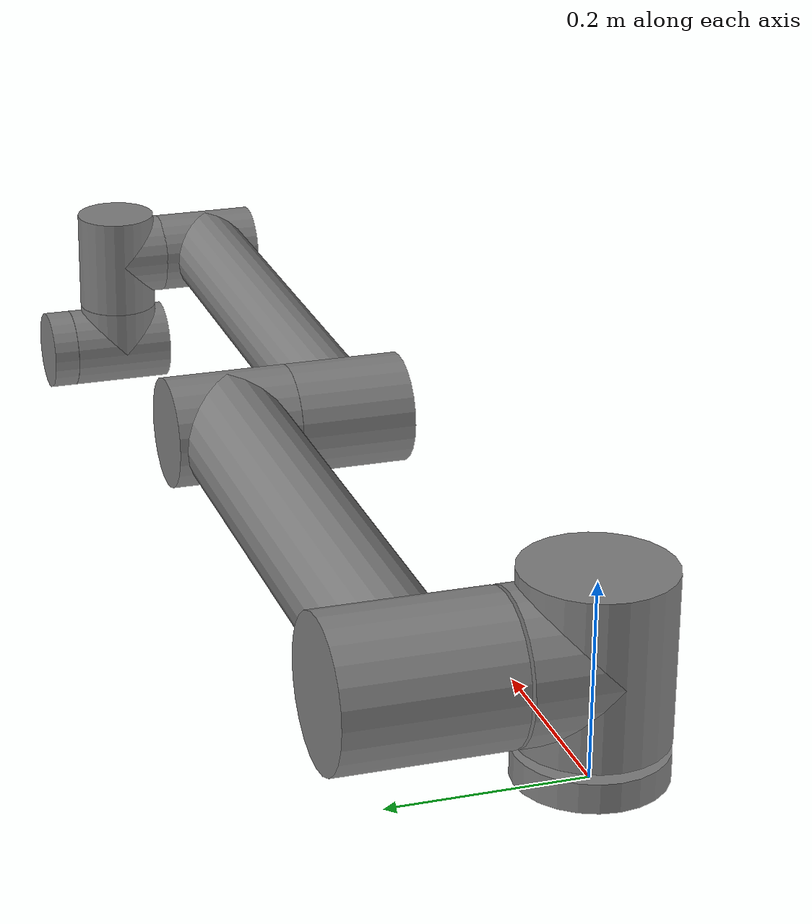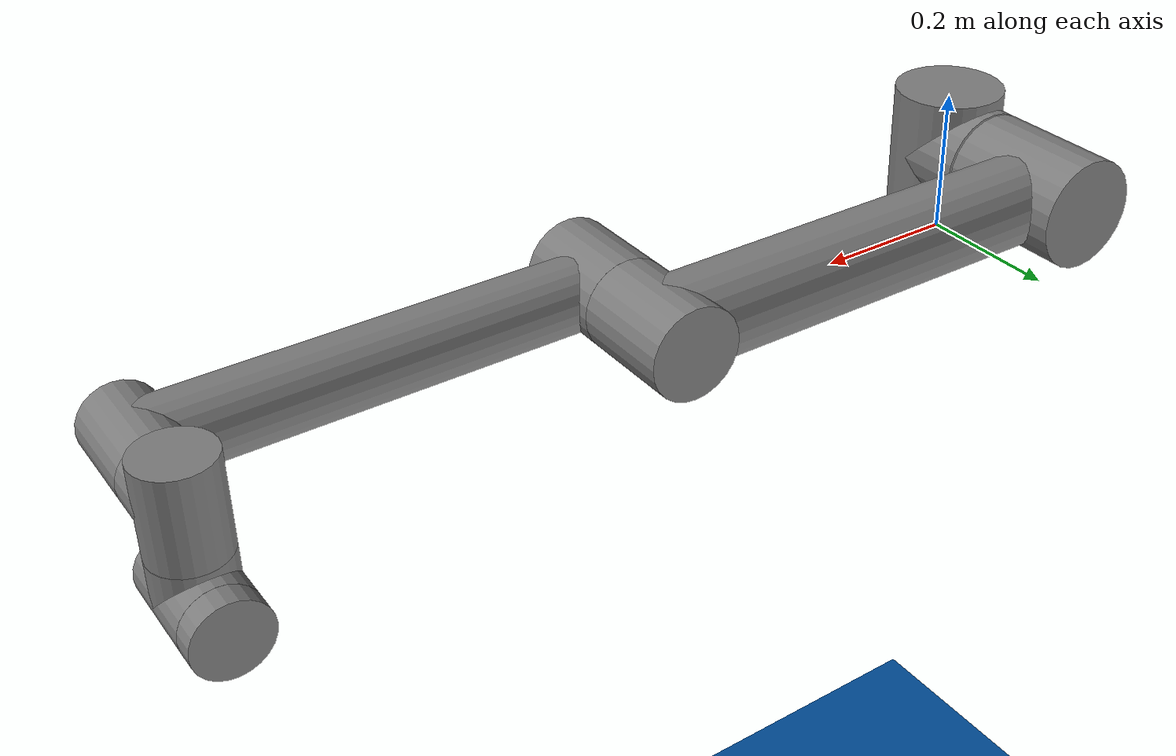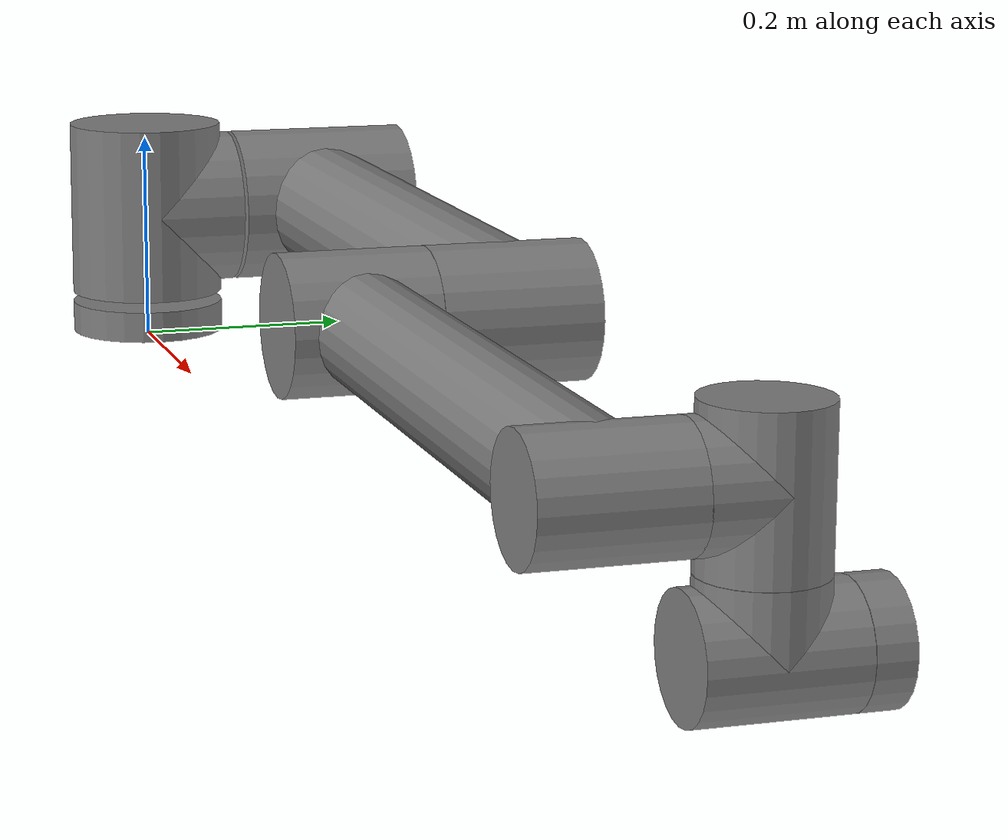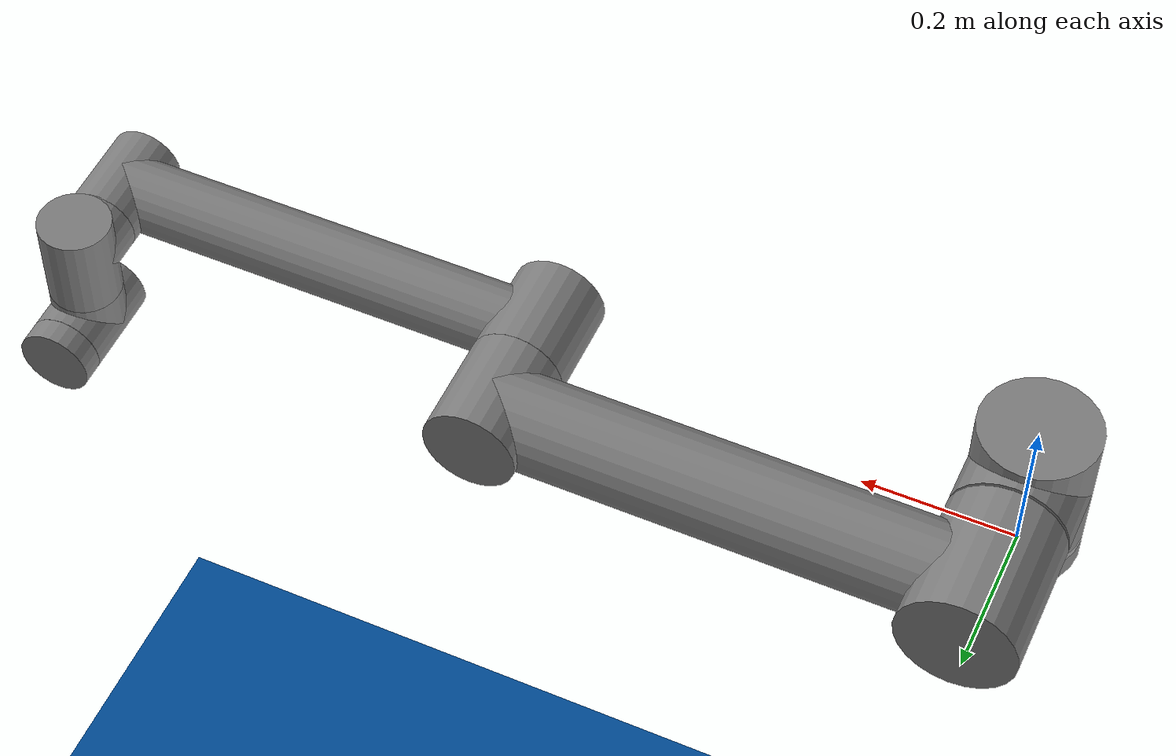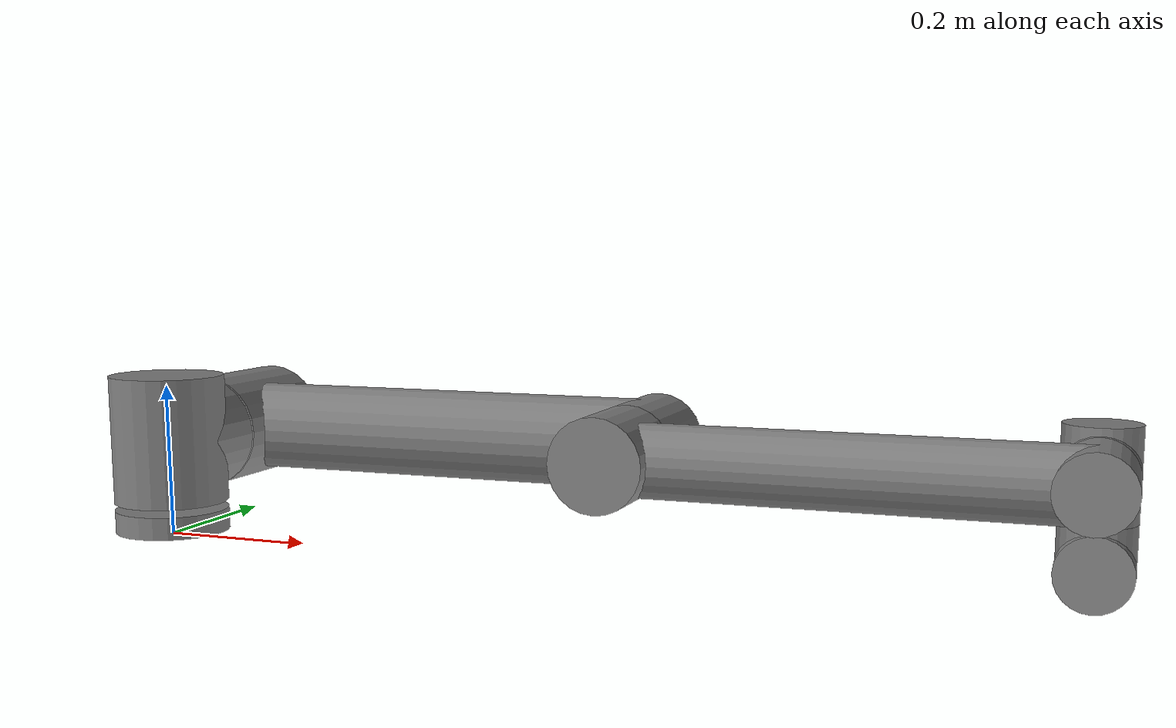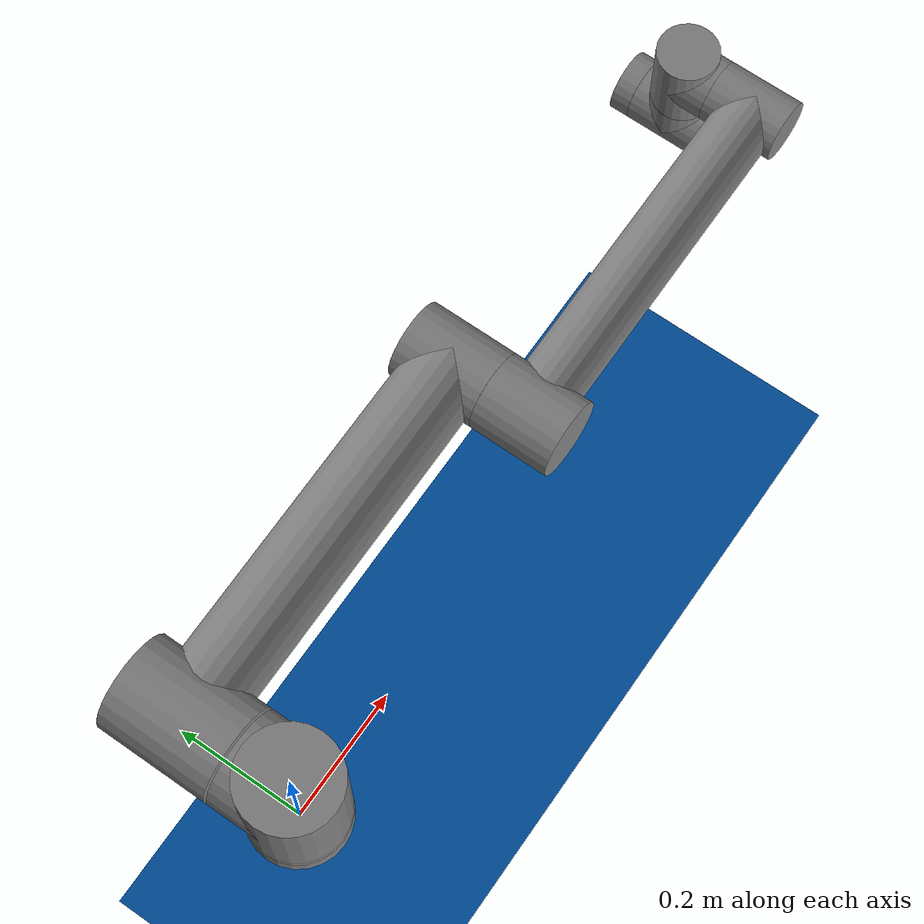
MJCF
<mujoco model="MuJoCo Model">
  <compiler angle="radian"/>

  <option timestep="0.01" integrator="implicitfast" ls_iterations="10"/>

  <default>
    <geom friction="1 0.5 0.001"/>
  </default>

  <worldbody>
    <geom name="/World/ground/GroundPlane/CollisionPlane_0" size="5 5 5" pos="0 0 -1.05" type="plane" contype="2" conaffinity="2147483645" friction="0.5 0.25 0.0005" rgba="0 0.3 0.6 1"/>
    <body name="/World/envs/env_0/Robot/base_link">
      <inertial pos="0 0 0" quat="0.5 0.5 -0.5 0.5" mass="200" diaginertia="0.00149103 0.000785276 0.000785276"/>
      <geom name="/World/envs/env_0/Robot/base_link/cylinder_1" size="0.075 0.015" pos="0 0 0.02" type="cylinder" contype="4" conaffinity="2147483643" friction="0.5 0.25 0.0005"/>
      <body name="/World/envs/env_0/Robot/shoulder_link" pos="0 -9.53675e-09 0.1273" quat="1 0 -1.49012e-07 0">
        <inertial pos="0 0 0" quat="0.999845 0.0176028 0 0" mass="7.1" diaginertia="0.016289 0.0156912 0.0132716"/>
        <joint name="/World/envs/env_0/Robot/base_link/shoulder_pan_joint" pos="0 9.53674e-09 0" axis="3.57628e-07 0 1" limited="true" range="-6.28318 6.28318" armature="0.001" frictionloss="1e-05"/>
        <geom name="/World/envs/env_0/Robot/shoulder_link/cylinder_2" size="0.075 0.085" pos="0 -2.38419e-09 0.0026999" type="cylinder" contype="4" conaffinity="2147483643" friction="0.5 0.25 0.0005"/>
        <geom name="/World/envs/env_0/Robot/shoulder_link/cylinder_0_3" size="0.075 0.0425" pos="0 0.0425 0.000699915" quat="0.707107 0.707107 0 0" type="cylinder" contype="4" conaffinity="2147483643" friction="0.5 0.25 0.0005"/>
        <body name="/World/envs/env_0/Robot/upper_arm_link" pos="0 0.220941 0" quat="0.707107 -6.05081e-09 0.707107 0">
          <inertial pos="0 0 0" mass="12.7" diaginertia="0.652271 0.647741 0.028455"/>
          <joint name="/World/envs/env_0/Robot/shoulder_link/shoulder_lift_joint" pos="0 0 0" axis="1.19209e-07 1 0" limited="true" range="-6.28318 6.28318" armature="0.001" frictionloss="1e-05"/>
          <geom name="/World/envs/env_0/Robot/upper_arm_link/cylinder_4" size="0.075 0.0875" pos="-0.000700006 -0.044941 1.86423e-10" quat="0.5 0.5 -0.5 0.5" type="cylinder" contype="4" conaffinity="2147483643" friction="0.5 0.25 0.0005"/>
          <geom name="/World/envs/env_0/Robot/upper_arm_link/cylinder_0_5" size="0.06 0.306" pos="-0.000699925 -0.044941 0.306" quat="1 0 3.332e-08 0" type="cylinder" contype="4" conaffinity="2147483643" friction="0.5 0.25 0.0005"/>
          <geom name="/World/envs/env_0/Robot/upper_arm_link/cylinder_1_6" size="0.06 0.068" pos="-0.000699844 -0.044941 0.612" quat="0.5 0.5 -0.5 0.5" type="cylinder" contype="4" conaffinity="2147483643" friction="0.5 0.25 0.0005"/>
          <body name="/World/envs/env_0/Robot/forearm_link" pos="0 -0.1719 0.612" quat="1 -2.98023e-08 4.18033e-08 0">
            <inertial pos="0 0 0" quat="0.999995 -0.00328511 0 0" mass="4.27" diaginertia="0.29372 0.292612 0.00896185"/>
            <joint name="/World/envs/env_0/Robot/upper_arm_link/elbow_joint" pos="0 0 0" axis="1.19209e-07 1 5.96046e-08" limited="true" range="-6.28318 6.28318" armature="0.001" frictionloss="1e-05"/>
            <geom name="/World/envs/env_0/Robot/forearm_link/cylinder_7" size="0.06 0.063" pos="-0.000700045 -0.00415104 -3.79605e-08" quat="0.5 0.5 -0.5 0.5" type="cylinder" contype="4" conaffinity="2147483643" friction="0.5 0.25 0.0005"/>
            <geom name="/World/envs/env_0/Robot/forearm_link/cylinder_0_8" size="0.047 0.286" pos="-0.000699968 -0.00104104 0.286" quat="1 0 3.332e-08 0" type="cylinder" contype="4" conaffinity="2147483643" friction="0.5 0.25 0.0005"/>
            <geom name="/World/envs/env_0/Robot/forearm_link/cylinder_1_9" size="0.047 0.059" pos="-0.000699892 0.00175896 0.572" quat="0.5 0.5 -0.5 0.5" type="cylinder" contype="4" conaffinity="2147483643" friction="0.5 0.25 0.0005"/>
            <body name="/World/envs/env_0/Robot/wrist_1_link" pos="0 0 0.5723" quat="0.707107 6.05081e-09 0.707107 0">
              <inertial pos="0 0 0" quat="0.999714 -0.0239215 0 0" mass="1" diaginertia="0.00190835 0.001827 0.0014074"/>
              <joint name="/World/envs/env_0/Robot/forearm_link/wrist_1_joint" pos="0 0 0" axis="1.19209e-07 1 0" limited="true" range="-6.28318 6.28318" armature="0.001" frictionloss="1e-05"/>
              <geom name="/World/envs/env_0/Robot/wrist_1_link/cylinder_10" size="0.047 0.0275" pos="0.000299911 0.0874591 -0.000700064" quat="0 0 0.707107 -0.707107" type="cylinder" contype="4" conaffinity="2147483643" friction="0.5 0.25 0.0005"/>
              <geom name="/World/envs/env_0/Robot/wrist_1_link/cylinder_0_11" size="0.047 0.059" pos="0.000299911 0.114959 0.00209994" quat="0 0 1 0" type="cylinder" contype="4" conaffinity="2147483643" friction="0.5 0.25 0.0005"/>
              <body name="/World/envs/env_0/Robot/wrist_2_link" pos="0 0.1149 0" quat="1 0 -8.9407e-08 -6.35737e-10">
                <inertial pos="0 0 0" quat="0.690932 0.72292 0 0" mass="1" diaginertia="0.00188988 0.00181923 0.00138903"/>
                <joint name="/World/envs/env_0/Robot/wrist_1_link/wrist_2_joint" pos="0 0 0" axis="1.19209e-07 0 1" limited="true" range="-6.28318 6.28318" armature="0.001" frictionloss="1e-05"/>
                <geom name="/World/envs/env_0/Robot/wrist_2_link/cylinder_12" size="0.047 0.027" pos="0.000299911 5.89943e-05 0.0882998" quat="0 0 1 0" type="cylinder" contype="4" conaffinity="2147483643" friction="0.5 0.25 0.0005"/>
                <geom name="/World/envs/env_0/Robot/wrist_2_link/cylinder_0_13" size="0.047 0.059" pos="0.000299911 0.002859 0.1153" quat="0 0 0.707107 -0.707107" type="cylinder" contype="4" conaffinity="2147483643" friction="0.5 0.25 0.0005"/>
                <body name="/World/envs/env_0/Robot/wrist_3_link" pos="0 0 0.1157">
                  <inertial pos="0 0 0" quat="0.707107 0 0 0.707107" mass="0.365" diaginertia="0.000229949 0.000130589 0.000130589"/>
                  <joint name="/World/envs/env_0/Robot/wrist_2_link/wrist_3_joint" pos="0 0 0" axis="1.19209e-07 1 0" limited="true" range="-6.28318 6.28318" armature="0.001" frictionloss="1e-05"/>
                  <geom name="/World/envs/env_0/Robot/wrist_3_link/cylinder_14" size="0.047 0.015" pos="0.000299911 0.077059 -0.000400075" quat="0 0 0.707107 -0.707107" type="cylinder" contype="4" conaffinity="2147483643" friction="0.5 0.25 0.0005"/>
                  <body name="/World/envs/env_0/Robot/ee_link" pos="0 0.0922 0" quat="-0.5 -0.5 -0.5 -0.5">
                    <inertial pos="0 0 0" mass="0.01" diaginertia="7.14498e-07 7.14498e-07 7.14498e-07"/>
                  </body>
                </body>
              </body>
            </body>
          </body>
        </body>
      </body>
    </body>
  </worldbody>

  <contact>
    <exclude body1="/World/envs/env_0/Robot/base_link" body2="/World/envs/env_0/Robot/shoulder_link"/>
    <exclude body1="/World/envs/env_0/Robot/base_link" body2="/World/envs/env_0/Robot/upper_arm_link"/>
    <exclude body1="/World/envs/env_0/Robot/base_link" body2="/World/envs/env_0/Robot/forearm_link"/>
    <exclude body1="/World/envs/env_0/Robot/base_link" body2="/World/envs/env_0/Robot/wrist_1_link"/>
    <exclude body1="/World/envs/env_0/Robot/base_link" body2="/World/envs/env_0/Robot/wrist_2_link"/>
    <exclude body1="/World/envs/env_0/Robot/base_link" body2="/World/envs/env_0/Robot/wrist_3_link"/>
    <exclude body1="/World/envs/env_0/Robot/base_link" body2="/World/envs/env_0/Robot/ee_link"/>
    <exclude body1="/World/envs/env_0/Robot/shoulder_link" body2="/World/envs/env_0/Robot/upper_arm_link"/>
    <exclude body1="/World/envs/env_0/Robot/shoulder_link" body2="/World/envs/env_0/Robot/forearm_link"/>
    <exclude body1="/World/envs/env_0/Robot/shoulder_link" body2="/World/envs/env_0/Robot/wrist_1_link"/>
    <exclude body1="/World/envs/env_0/Robot/shoulder_link" body2="/World/envs/env_0/Robot/wrist_2_link"/>
    <exclude body1="/World/envs/env_0/Robot/shoulder_link" body2="/World/envs/env_0/Robot/wrist_3_link"/>
    <exclude body1="/World/envs/env_0/Robot/shoulder_link" body2="/World/envs/env_0/Robot/ee_link"/>
    <exclude body1="/World/envs/env_0/Robot/upper_arm_link" body2="/World/envs/env_0/Robot/forearm_link"/>
    <exclude body1="/World/envs/env_0/Robot/upper_arm_link" body2="/World/envs/env_0/Robot/wrist_1_link"/>
    <exclude body1="/World/envs/env_0/Robot/upper_arm_link" body2="/World/envs/env_0/Robot/wrist_2_link"/>
    <exclude body1="/World/envs/env_0/Robot/upper_arm_link" body2="/World/envs/env_0/Robot/wrist_3_link"/>
    <exclude body1="/World/envs/env_0/Robot/upper_arm_link" body2="/World/envs/env_0/Robot/ee_link"/>
    <exclude body1="/World/envs/env_0/Robot/forearm_link" body2="/World/envs/env_0/Robot/wrist_1_link"/>
    <exclude body1="/World/envs/env_0/Robot/forearm_link" body2="/World/envs/env_0/Robot/wrist_2_link"/>
    <exclude body1="/World/envs/env_0/Robot/forearm_link" body2="/World/envs/env_0/Robot/wrist_3_link"/>
    <exclude body1="/World/envs/env_0/Robot/forearm_link" body2="/World/envs/env_0/Robot/ee_link"/>
    <exclude body1="/World/envs/env_0/Robot/wrist_1_link" body2="/World/envs/env_0/Robot/wrist_2_link"/>
    <exclude body1="/World/envs/env_0/Robot/wrist_1_link" body2="/World/envs/env_0/Robot/wrist_3_link"/>
    <exclude body1="/World/envs/env_0/Robot/wrist_1_link" body2="/World/envs/env_0/Robot/ee_link"/>
    <exclude body1="/World/envs/env_0/Robot/wrist_2_link" body2="/World/envs/env_0/Robot/wrist_3_link"/>
    <exclude body1="/World/envs/env_0/Robot/wrist_2_link" body2="/World/envs/env_0/Robot/ee_link"/>
    <exclude body1="/World/envs/env_0/Robot/wrist_3_link" body2="/World/envs/env_0/Robot/ee_link"/>
  </contact>

  <actuator>
    <general joint="/World/envs/env_0/Robot/base_link/shoulder_pan_joint" forcerange="-87 87" biastype="affine" gainprm="800" biasprm="0 -800 -40"/>
    <general joint="/World/envs/env_0/Robot/shoulder_link/shoulder_lift_joint" forcerange="-87 87" biastype="affine" gainprm="800" biasprm="0 -800 -40"/>
    <general joint="/World/envs/env_0/Robot/upper_arm_link/elbow_joint" forcerange="-87 87" biastype="affine" gainprm="800" biasprm="0 -800 -40"/>
    <general joint="/World/envs/env_0/Robot/forearm_link/wrist_1_joint" forcerange="-87 87" biastype="affine" gainprm="800" biasprm="0 -800 -40"/>
    <general joint="/World/envs/env_0/Robot/wrist_1_link/wrist_2_joint" forcerange="-87 87" biastype="affine" gainprm="800" biasprm="0 -800 -40"/>
    <general joint="/World/envs/env_0/Robot/wrist_2_link/wrist_3_joint" forcerange="-87 87" biastype="affine" gainprm="800" biasprm="0 -800 -40"/>
  </actuator>
</mujoco>
